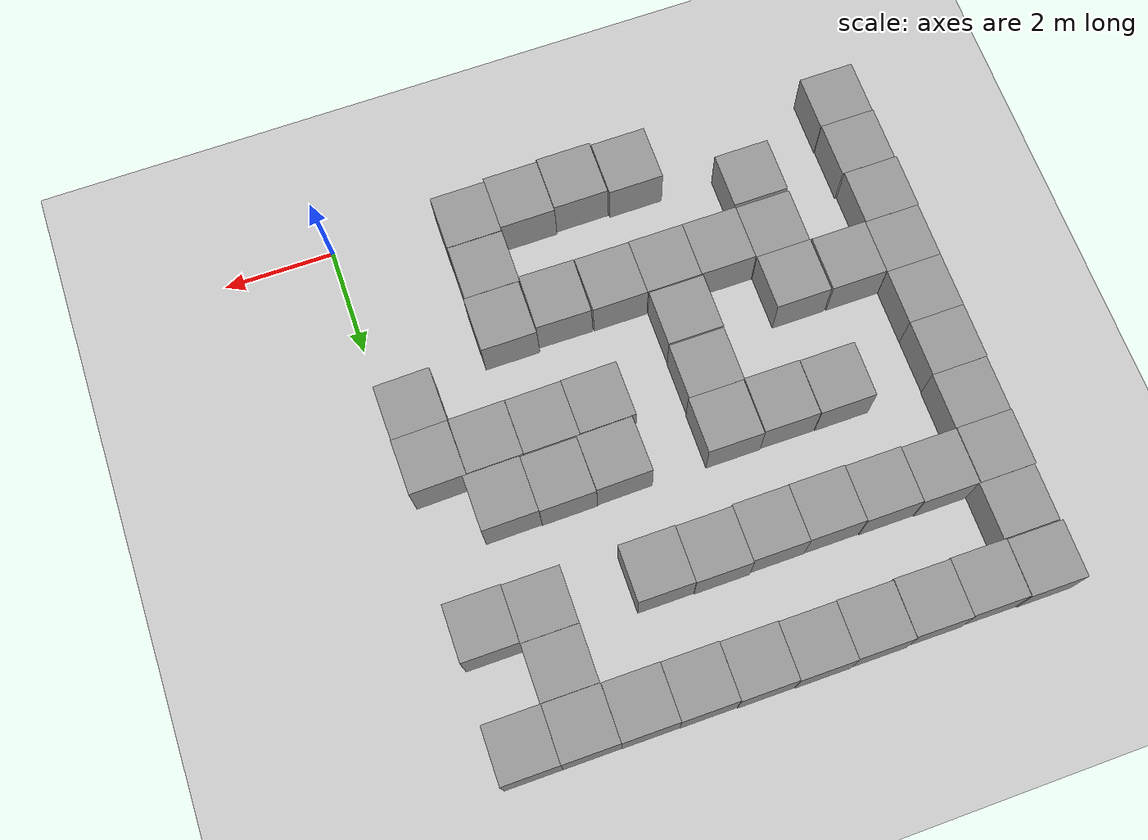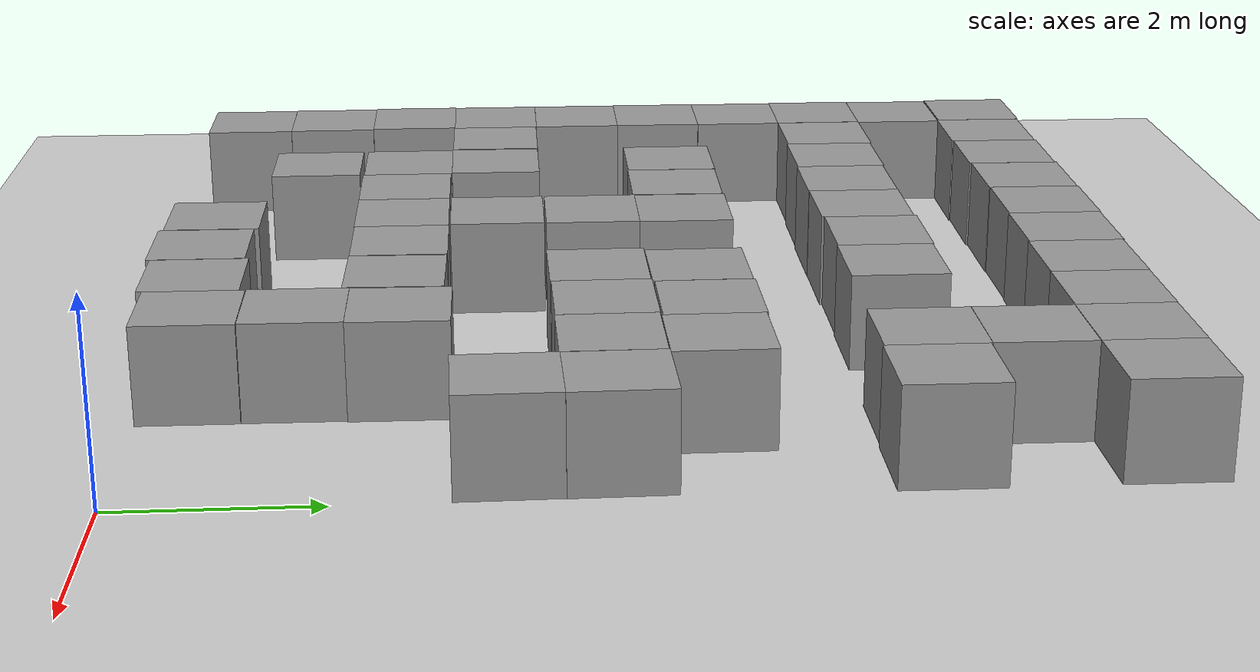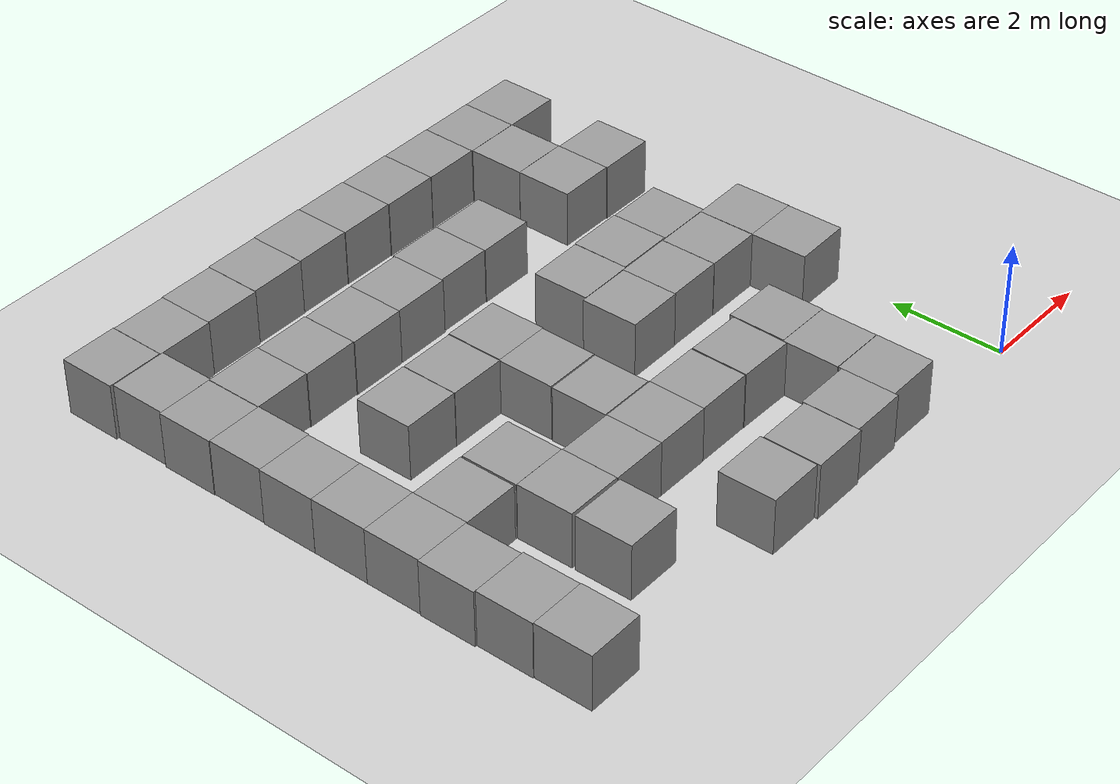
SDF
<sdf version="1.7">
 <world name="default">
  <model name="ground_plane">
   <static>1</static>
   <link name="link">
    <collision name="collision">
     <geometry><plane><normal>0 0 1</normal><size>100 100</size></plane></geometry>
     <surface><friction><ode><mu>100</mu><mu2>50</mu2></ode></friction></surface>
    </collision>
    <visual name="visual">
     <cast_shadows>0</cast_shadows>
     <geometry><plane><normal>0 0 1</normal><size>100 100</size></plane></geometry>
     <material>
      <script><uri>file://media/materials/scripts/gazebo.material</uri><name>Gazebo/Grey</name></script>
     </material>
    </visual>
   </link>
  </model>
  <model name="unit_box_24">
   <pose>-0.509041 7.47722 0.5 -0 -0 -0.00085</pose>
   <link name="link">
    <inertial>
     <mass>1</mass>
     <inertia>
      <ixx>0.166667</ixx>
      <ixy>0</ixy>
      <ixz>0</ixz>
      <iyy>0.166667</iyy>
      <iyz>0</iyz>
      <izz>0.166667</izz>
     </inertia>
    </inertial>
    <collision name="collision"><geometry><box><size>1 1 1</size></box></geometry></collision>
    <visual name="visual">
     <geometry><box><size>1 1 1</size></box></geometry>
     <material>
      <script><name>Gazebo/Grey</name><uri>file://media/materials/scripts/gazebo.material</uri></script>
     </material>
    </visual>
   </link>
  </model>
  <model name="unit_box_28">
   <pose>-0.516085 9.49636 0.5 -0 -0 -0.000638</pose>
   <link name="link">
    <inertial>
     <mass>1</mass>
     <inertia>
      <ixx>0.166667</ixx>
      <ixy>0</ixy>
      <ixz>0</ixz>
      <iyy>0.166667</iyy>
      <iyz>0</iyz>
      <izz>0.166667</izz>
     </inertia>
    </inertial>
    <collision name="collision"><geometry><box><size>1 1 1</size></box></geometry></collision>
    <visual name="visual">
     <geometry><box><size>1 1 1</size></box></geometry>
     <material>
      <script><name>Gazebo/Grey</name><uri>file://media/materials/scripts/gazebo.material</uri></script>
     </material>
    </visual>
   </link>
  </model>
  <model name="unit_box_29">
   <pose>-1.51618 9.49897 0.5 0 0 -0.000832</pose>
   <link name="link">
    <inertial>
     <mass>1</mass>
     <inertia>
      <ixx>0.166667</ixx>
      <ixy>0</ixy>
      <ixz>0</ixz>
      <iyy>0.166667</iyy>
      <iyz>0</iyz>
      <izz>0.166667</izz>
     </inertia>
    </inertial>
    <collision name="collision"><geometry><box><size>1 1 1</size></box></geometry></collision>
    <visual name="visual">
     <geometry><box><size>1 1 1</size></box></geometry>
     <material>
      <script><name>Gazebo/Grey</name><uri>file://media/materials/scripts/gazebo.material</uri></script>
     </material>
    </visual>
   </link>
  </model>
  <model name="unit_box_30">
   <pose>-1.50811 8.49539 0.5 -0 -0 -0.002751</pose>
   <link name="link">
    <inertial>
     <mass>1</mass>
     <inertia>
      <ixx>0.166667</ixx>
      <ixy>0</ixy>
      <ixz>0</ixz>
      <iyy>0.166667</iyy>
      <iyz>0</iyz>
      <izz>0.166667</izz>
     </inertia>
    </inertial>
    <collision name="collision"><geometry><box><size>1 1 1</size></box></geometry></collision>
    <visual name="visual">
     <geometry><box><size>1 1 1</size></box></geometry>
     <material>
      <script><name>Gazebo/Grey</name><uri>file://media/materials/scripts/gazebo.material</uri></script>
     </material>
    </visual>
   </link>
  </model>
  <model name="unit_box_31">
   <pose>-1.50908 7.49382 0.5 0 0 -0.000782</pose>
   <link name="link">
    <inertial>
     <mass>1</mass>
     <inertia>
      <ixx>0.166667</ixx>
      <ixy>0</ixy>
      <ixz>0</ixz>
      <iyy>0.166667</iyy>
      <iyz>0</iyz>
      <izz>0.166667</izz>
     </inertia>
    </inertial>
    <collision name="collision"><geometry><box><size>1 1 1</size></box></geometry></collision>
    <visual name="visual">
     <geometry><box><size>1 1 1</size></box></geometry>
     <material>
      <script><name>Gazebo/Grey</name><uri>file://media/materials/scripts/gazebo.material</uri></script>
     </material>
    </visual>
   </link>
  </model>
  <model name="unit_box_44">
   <pose>-0.525074 3.55463 0.5 0 -0 0.01907</pose>
   <link name="link">
    <inertial>
     <mass>1</mass>
     <inertia>
      <ixx>0.166667</ixx>
      <ixy>0</ixy>
      <ixz>0</ixz>
      <iyy>0.166667</iyy>
      <iyz>0</iyz>
      <izz>0.166667</izz>
     </inertia>
    </inertial>
    <collision name="collision"><geometry><box><size>1 1 1</size></box></geometry></collision>
    <visual name="visual">
     <geometry><box><size>1 1 1</size></box></geometry>
     <material>
      <script><name>Gazebo/Grey</name><uri>file://media/materials/scripts/gazebo.material</uri></script>
     </material>
    </visual>
   </link>
  </model>
  <model name="unit_box_45">
   <pose>-0.537463 4.55458 0.5 0 -0 0.019058</pose>
   <link name="link">
    <inertial>
     <mass>1</mass>
     <inertia>
      <ixx>0.166667</ixx>
      <ixy>0</ixy>
      <ixz>0</ixz>
      <iyy>0.166667</iyy>
      <iyz>0</iyz>
      <izz>0.166667</izz>
     </inertia>
    </inertial>
    <collision name="collision"><geometry><box><size>1 1 1</size></box></geometry></collision>
    <visual name="visual">
     <geometry><box><size>1 1 1</size></box></geometry>
     <material>
      <script><name>Gazebo/Grey</name><uri>file://media/materials/scripts/gazebo.material</uri></script>
     </material>
    </visual>
   </link>
  </model>
  <model name="unit_box_75">
   <pose>-2.51656 9.50541 0.5 0 0 -0.001612</pose>
   <link name="link">
    <inertial>
     <mass>1</mass>
     <inertia>
      <ixx>0.166667</ixx>
      <ixy>0</ixy>
      <ixz>0</ixz>
      <iyy>0.166667</iyy>
      <iyz>0</iyz>
      <izz>0.166667</izz>
     </inertia>
    </inertial>
    <collision name="collision"><geometry><box><size>1 1 1</size></box></geometry></collision>
    <visual name="visual">
     <geometry><box><size>1 1 1</size></box></geometry>
     <material>
      <script><name>Gazebo/Grey</name><uri>file://media/materials/scripts/gazebo.material</uri></script>
     </material>
    </visual>
   </link>
  </model>
  <model name="unit_box_76">
   <pose>-3.51668 9.51262 0.5 0 -0 -0.001869</pose>
   <link name="link">
    <inertial>
     <mass>1</mass>
     <inertia>
      <ixx>0.166667</ixx>
      <ixy>0</ixy>
      <ixz>0</ixz>
      <iyy>0.166667</iyy>
      <iyz>0</iyz>
      <izz>0.166667</izz>
     </inertia>
    </inertial>
    <collision name="collision"><geometry><box><size>1 1 1</size></box></geometry></collision>
    <visual name="visual">
     <geometry><box><size>1 1 1</size></box></geometry>
     <material>
      <script><name>Gazebo/Grey</name><uri>file://media/materials/scripts/gazebo.material</uri></script>
     </material>
    </visual>
   </link>
  </model>
  <model name="unit_box_77">
   <pose>-4.51687 9.52745 0.5 0 0 -0.002306</pose>
   <link name="link">
    <inertial>
     <mass>1</mass>
     <inertia>
      <ixx>0.166667</ixx>
      <ixy>0</ixy>
      <ixz>0</ixz>
      <iyy>0.166667</iyy>
      <iyz>0</iyz>
      <izz>0.166667</izz>
     </inertia>
    </inertial>
    <collision name="collision"><geometry><box><size>1 1 1</size></box></geometry></collision>
    <visual name="visual">
     <geometry><box><size>1 1 1</size></box></geometry>
     <material>
      <script><name>Gazebo/Grey</name><uri>file://media/materials/scripts/gazebo.material</uri></script>
     </material>
    </visual>
   </link>
  </model>
  <model name="unit_box_78">
   <pose>-5.51696 9.54083 0.5 0 -0 -0.002557</pose>
   <link name="link">
    <inertial>
     <mass>1</mass>
     <inertia>
      <ixx>0.166667</ixx>
      <ixy>0</ixy>
      <ixz>0</ixz>
      <iyy>0.166667</iyy>
      <iyz>0</iyz>
      <izz>0.166667</izz>
     </inertia>
    </inertial>
    <collision name="collision"><geometry><box><size>1 1 1</size></box></geometry></collision>
    <visual name="visual">
     <geometry><box><size>1 1 1</size></box></geometry>
     <material>
      <script><name>Gazebo/Grey</name><uri>file://media/materials/scripts/gazebo.material</uri></script>
     </material>
    </visual>
   </link>
  </model>
  <model name="unit_box_79">
   <pose>-6.5174 9.53508 0.5 0 0 -0.003402</pose>
   <link name="link">
    <inertial>
     <mass>1</mass>
     <inertia>
      <ixx>0.166667</ixx>
      <ixy>0</ixy>
      <ixz>0</ixz>
      <iyy>0.166667</iyy>
      <iyz>0</iyz>
      <izz>0.166667</izz>
     </inertia>
    </inertial>
    <collision name="collision"><geometry><box><size>1 1 1</size></box></geometry></collision>
    <visual name="visual">
     <geometry><box><size>1 1 1</size></box></geometry>
     <material>
      <script><name>Gazebo/Grey</name><uri>file://media/materials/scripts/gazebo.material</uri></script>
     </material>
    </visual>
   </link>
  </model>
  <model name="unit_box_80">
   <pose>-7.5195 9.52243 0.5 -0 -0 -0.007505</pose>
   <link name="link">
    <inertial>
     <mass>1</mass>
     <inertia>
      <ixx>0.166667</ixx>
      <ixy>0</ixy>
      <ixz>0</ixz>
      <iyy>0.166667</iyy>
      <iyz>0</iyz>
      <izz>0.166667</izz>
     </inertia>
    </inertial>
    <collision name="collision"><geometry><box><size>1 1 1</size></box></geometry></collision>
    <visual name="visual">
     <geometry><box><size>1 1 1</size></box></geometry>
     <material>
      <script><name>Gazebo/Grey</name><uri>file://media/materials/scripts/gazebo.material</uri></script>
     </material>
    </visual>
   </link>
  </model>
  <model name="unit_box_81">
   <pose>-8.5196 9.51523 0.5 0 0 -0.00754</pose>
   <link name="link">
    <inertial>
     <mass>1</mass>
     <inertia>
      <ixx>0.166667</ixx>
      <ixy>0</ixy>
      <ixz>0</ixz>
      <iyy>0.166667</iyy>
      <iyz>0</iyz>
      <izz>0.166667</izz>
     </inertia>
    </inertial>
    <collision name="collision"><geometry><box><size>1 1 1</size></box></geometry></collision>
    <visual name="visual">
     <geometry><box><size>1 1 1</size></box></geometry>
     <material>
      <script><name>Gazebo/Grey</name><uri>file://media/materials/scripts/gazebo.material</uri></script>
     </material>
    </visual>
   </link>
  </model>
  <model name="unit_box_82">
   <pose>-9.52172 9.53528 0.5 0 -0 -0.003047</pose>
   <link name="link">
    <inertial>
     <mass>1</mass>
     <inertia>
      <ixx>0.166667</ixx>
      <ixy>0</ixy>
      <ixz>0</ixz>
      <iyy>0.166667</iyy>
      <iyz>0</iyz>
      <izz>0.166667</izz>
     </inertia>
    </inertial>
    <collision name="collision"><geometry><box><size>1 1 1</size></box></geometry></collision>
    <visual name="visual">
     <geometry><box><size>1 1 1</size></box></geometry>
     <material>
      <script><name>Gazebo/Grey</name><uri>file://media/materials/scripts/gazebo.material</uri></script>
     </material>
    </visual>
   </link>
  </model>
  <model name="unit_box_83">
   <pose>-9.4779 8.519 0.5 0 0 -0.000674</pose>
   <link name="link">
    <inertial>
     <mass>1</mass>
     <inertia>
      <ixx>0.166667</ixx>
      <ixy>0</ixy>
      <ixz>0</ixz>
      <iyy>0.166667</iyy>
      <iyz>0</iyz>
      <izz>0.166667</izz>
     </inertia>
    </inertial>
    <collision name="collision"><geometry><box><size>1 1 1</size></box></geometry></collision>
    <visual name="visual">
     <geometry><box><size>1 1 1</size></box></geometry>
     <material>
      <script><name>Gazebo/Grey</name><uri>file://media/materials/scripts/gazebo.material</uri></script>
     </material>
    </visual>
   </link>
  </model>
  <model name="unit_box_84">
   <pose>-9.51006 7.5183 0.5 0 -0 -0.000219</pose>
   <link name="link">
    <inertial>
     <mass>1</mass>
     <inertia>
      <ixx>0.166667</ixx>
      <ixy>0</ixy>
      <ixz>0</ixz>
      <iyy>0.166667</iyy>
      <iyz>0</iyz>
      <izz>0.166667</izz>
     </inertia>
    </inertial>
    <collision name="collision"><geometry><box><size>1 1 1</size></box></geometry></collision>
    <visual name="visual">
     <geometry><box><size>1 1 1</size></box></geometry>
     <material>
      <script><name>Gazebo/Grey</name><uri>file://media/materials/scripts/gazebo.material</uri></script>
     </material>
    </visual>
   </link>
  </model>
  <model name="unit_box_85">
   <pose>-9.49862 6.5183 0.5 -0 -0 -0.000219</pose>
   <link name="link">
    <inertial>
     <mass>1</mass>
     <inertia>
      <ixx>0.166667</ixx>
      <ixy>0</ixy>
      <ixz>0</ixz>
      <iyy>0.166667</iyy>
      <iyz>0</iyz>
      <izz>0.166667</izz>
     </inertia>
    </inertial>
    <collision name="collision"><geometry><box><size>1 1 1</size></box></geometry></collision>
    <visual name="visual">
     <geometry><box><size>1 1 1</size></box></geometry>
     <material>
      <script><name>Gazebo/Grey</name><uri>file://media/materials/scripts/gazebo.material</uri></script>
     </material>
    </visual>
   </link>
  </model>
  <model name="unit_box_86">
   <pose>-9.51218 5.51827 0.5 0 0 -0.000156</pose>
   <link name="link">
    <inertial>
     <mass>1</mass>
     <inertia>
      <ixx>0.166667</ixx>
      <ixy>0</ixy>
      <ixz>0</ixz>
      <iyy>0.166667</iyy>
      <iyz>0</iyz>
      <izz>0.166667</izz>
     </inertia>
    </inertial>
    <collision name="collision"><geometry><box><size>1 1 1</size></box></geometry></collision>
    <visual name="visual">
     <geometry><box><size>1 1 1</size></box></geometry>
     <material>
      <script><name>Gazebo/Grey</name><uri>file://media/materials/scripts/gazebo.material</uri></script>
     </material>
    </visual>
   </link>
  </model>
  <model name="unit_box_87">
   <pose>-9.51178 4.51825 0.5 -0 -0 -0.000118</pose>
   <link name="link">
    <inertial>
     <mass>1</mass>
     <inertia>
      <ixx>0.166667</ixx>
      <ixy>0</ixy>
      <ixz>0</ixz>
      <iyy>0.166667</iyy>
      <iyz>0</iyz>
      <izz>0.166667</izz>
     </inertia>
    </inertial>
    <collision name="collision"><geometry><box><size>1 1 1</size></box></geometry></collision>
    <visual name="visual">
     <geometry><box><size>1 1 1</size></box></geometry>
     <material>
      <script><name>Gazebo/Grey</name><uri>file://media/materials/scripts/gazebo.material</uri></script>
     </material>
    </visual>
   </link>
  </model>
  <model name="unit_box_88">
   <pose>-9.51457 3.51821 0.5 0 0 -4.4e-05</pose>
   <link name="link">
    <inertial>
     <mass>1</mass>
     <inertia>
      <ixx>0.166667</ixx>
      <ixy>0</ixy>
      <ixz>0</ixz>
      <iyy>0.166667</iyy>
      <iyz>0</iyz>
      <izz>0.166667</izz>
     </inertia>
    </inertial>
    <collision name="collision"><geometry><box><size>1 1 1</size></box></geometry></collision>
    <visual name="visual">
     <geometry><box><size>1 1 1</size></box></geometry>
     <material>
      <script><name>Gazebo/Grey</name><uri>file://media/materials/scripts/gazebo.material</uri></script>
     </material>
    </visual>
   </link>
  </model>
  <model name="unit_box_89">
   <pose>-9.52834 2.51818 0.5 0 -0 1.4e-05</pose>
   <link name="link">
    <inertial>
     <mass>1</mass>
     <inertia>
      <ixx>0.166667</ixx>
      <ixy>0</ixy>
      <ixz>0</ixz>
      <iyy>0.166667</iyy>
      <iyz>0</iyz>
      <izz>0.166667</izz>
     </inertia>
    </inertial>
    <collision name="collision"><geometry><box><size>1 1 1</size></box></geometry></collision>
    <visual name="visual">
     <geometry><box><size>1 1 1</size></box></geometry>
     <material>
      <script><name>Gazebo/Grey</name><uri>file://media/materials/scripts/gazebo.material</uri></script>
     </material>
    </visual>
   </link>
  </model>
  <model name="unit_box_90">
   <pose>-9.4951 1.51812 0.5 0 -0 0.000152</pose>
   <link name="link">
    <inertial>
     <mass>1</mass>
     <inertia>
      <ixx>0.166667</ixx>
      <ixy>0</ixy>
      <ixz>0</ixz>
      <iyy>0.166667</iyy>
      <iyz>0</iyz>
      <izz>0.166667</izz>
     </inertia>
    </inertial>
    <collision name="collision"><geometry><box><size>1 1 1</size></box></geometry></collision>
    <visual name="visual">
     <geometry><box><size>1 1 1</size></box></geometry>
     <material>
      <script><name>Gazebo/Grey</name><uri>file://media/materials/scripts/gazebo.material</uri></script>
     </material>
    </visual>
   </link>
  </model>
  <model name="unit_box_91">
   <pose>-9.48183 0.518103 0.5 0 -0 0.000189</pose>
   <link name="link">
    <inertial>
     <mass>1</mass>
     <inertia>
      <ixx>0.166667</ixx>
      <ixy>0</ixy>
      <ixz>0</ixz>
      <iyy>0.166667</iyy>
      <iyz>0</iyz>
      <izz>0.166667</izz>
     </inertia>
    </inertial>
    <collision name="collision"><geometry><box><size>1 1 1</size></box></geometry></collision>
    <visual name="visual">
     <geometry><box><size>1 1 1</size></box></geometry>
     <material>
      <script><name>Gazebo/Grey</name><uri>file://media/materials/scripts/gazebo.material</uri></script>
     </material>
    </visual>
   </link>
  </model>
  <model name="unit_box_127">
   <pose>-3.50445 7.50714 0.5 0 -0 0.000685</pose>
   <link name="link">
    <inertial>
     <mass>1</mass>
     <inertia>
      <ixx>0.166667</ixx>
      <ixy>0</ixy>
      <ixz>0</ixz>
      <iyy>0.166667</iyy>
      <iyz>0</iyz>
      <izz>0.166667</izz>
     </inertia>
    </inertial>
    <collision name="collision"><geometry><box><size>1 1 1</size></box></geometry></collision>
    <visual name="visual">
     <geometry><box><size>1 1 1</size></box></geometry>
     <material>
      <script><name>Gazebo/Grey</name><uri>file://media/materials/scripts/gazebo.material</uri></script>
     </material>
    </visual>
   </link>
  </model>
  <model name="unit_box_128">
   <pose>-4.50448 7.52032 0.5 0 -0 0.000716</pose>
   <link name="link">
    <inertial>
     <mass>1</mass>
     <inertia>
      <ixx>0.166667</ixx>
      <ixy>0</ixy>
      <ixz>0</ixz>
      <iyy>0.166667</iyy>
      <iyz>0</iyz>
      <izz>0.166667</izz>
     </inertia>
    </inertial>
    <collision name="collision"><geometry><box><size>1 1 1</size></box></geometry></collision>
    <visual name="visual">
     <geometry><box><size>1 1 1</size></box></geometry>
     <material>
      <script><name>Gazebo/Grey</name><uri>file://media/materials/scripts/gazebo.material</uri></script>
     </material>
    </visual>
   </link>
  </model>
  <model name="unit_box_129">
   <pose>-5.50447 7.4942 0.5 0 -0 0.000722</pose>
   <link name="link">
    <inertial>
     <mass>1</mass>
     <inertia>
      <ixx>0.166667</ixx>
      <ixy>0</ixy>
      <ixz>0</ixz>
      <iyy>0.166667</iyy>
      <iyz>0</iyz>
      <izz>0.166667</izz>
     </inertia>
    </inertial>
    <collision name="collision"><geometry><box><size>1 1 1</size></box></geometry></collision>
    <visual name="visual">
     <geometry><box><size>1 1 1</size></box></geometry>
     <material>
      <script><name>Gazebo/Grey</name><uri>file://media/materials/scripts/gazebo.material</uri></script>
     </material>
    </visual>
   </link>
  </model>
  <model name="unit_box_130">
   <pose>-6.50446 7.48901 0.5 0 -0 0.000723</pose>
   <link name="link">
    <inertial>
     <mass>1</mass>
     <inertia>
      <ixx>0.166667</ixx>
      <ixy>0</ixy>
      <ixz>0</ixz>
      <iyy>0.166667</iyy>
      <iyz>0</iyz>
      <izz>0.166667</izz>
     </inertia>
    </inertial>
    <collision name="collision"><geometry><box><size>1 1 1</size></box></geometry></collision>
    <visual name="visual">
     <geometry><box><size>1 1 1</size></box></geometry>
     <material>
      <script><name>Gazebo/Grey</name><uri>file://media/materials/scripts/gazebo.material</uri></script>
     </material>
    </visual>
   </link>
  </model>
  <model name="unit_box_131">
   <pose>-7.5045 7.50313 0.5 0 -0 0.000775</pose>
   <link name="link">
    <inertial>
     <mass>1</mass>
     <inertia>
      <ixx>0.166667</ixx>
      <ixy>0</ixy>
      <ixz>0</ixz>
      <iyy>0.166667</iyy>
      <iyz>0</iyz>
      <izz>0.166667</izz>
     </inertia>
    </inertial>
    <collision name="collision"><geometry><box><size>1 1 1</size></box></geometry></collision>
    <visual name="visual">
     <geometry><box><size>1 1 1</size></box></geometry>
     <material>
      <script><name>Gazebo/Grey</name><uri>file://media/materials/scripts/gazebo.material</uri></script>
     </material>
    </visual>
   </link>
  </model>
  <model name="unit_box_132">
   <pose>-8.50452 7.51904 0.5 0 -0 0.000783</pose>
   <link name="link">
    <inertial>
     <mass>1</mass>
     <inertia>
      <ixx>0.166667</ixx>
      <ixy>0</ixy>
      <ixz>0</ixz>
      <iyy>0.166667</iyy>
      <iyz>0</iyz>
      <izz>0.166667</izz>
     </inertia>
    </inertial>
    <collision name="collision"><geometry><box><size>1 1 1</size></box></geometry></collision>
    <visual name="visual">
     <geometry><box><size>1 1 1</size></box></geometry>
     <material>
      <script><name>Gazebo/Grey</name><uri>file://media/materials/scripts/gazebo.material</uri></script>
     </material>
    </visual>
   </link>
  </model>
  <model name="unit_box_133">
   <pose>-7.48225 5.53067 0.5 0 -0 0</pose>
   <link name="link">
    <inertial>
     <mass>1</mass>
     <inertia>
      <ixx>0.166667</ixx>
      <ixy>0</ixy>
      <ixz>0</ixz>
      <iyy>0.166667</iyy>
      <iyz>0</iyz>
      <izz>0.166667</izz>
     </inertia>
    </inertial>
    <collision name="collision"><geometry><box><size>1 1 1</size></box></geometry></collision>
    <visual name="visual">
     <geometry><box><size>1 1 1</size></box></geometry>
     <material>
      <script><name>Gazebo/Grey</name><uri>file://media/materials/scripts/gazebo.material</uri></script>
     </material>
    </visual>
   </link>
  </model>
  <model name="unit_box_134">
   <pose>-8.51457 3.50911 0.5 0 0 -4.1e-05</pose>
   <link name="link">
    <inertial>
     <mass>1</mass>
     <inertia>
      <ixx>0.166667</ixx>
      <ixy>0</ixy>
      <ixz>0</ixz>
      <iyy>0.166667</iyy>
      <iyz>0</iyz>
      <izz>0.166667</izz>
     </inertia>
    </inertial>
    <collision name="collision"><geometry><box><size>1 1 1</size></box></geometry></collision>
    <visual name="visual">
     <geometry><box><size>1 1 1</size></box></geometry>
     <material>
      <script><name>Gazebo/Grey</name><uri>file://media/materials/scripts/gazebo.material</uri></script>
     </material>
    </visual>
   </link>
  </model>
  <model name="unit_box_135">
   <pose>-6.47754 5.52072 0.5 -0 -0 -0.00552</pose>
   <link name="link">
    <inertial>
     <mass>1</mass>
     <inertia>
      <ixx>0.166667</ixx>
      <ixy>0</ixy>
      <ixz>0</ixz>
      <iyy>0.166667</iyy>
      <iyz>0</iyz>
      <izz>0.166667</izz>
     </inertia>
    </inertial>
    <collision name="collision"><geometry><box><size>1 1 1</size></box></geometry></collision>
    <visual name="visual">
     <geometry><box><size>1 1 1</size></box></geometry>
     <material>
      <script><name>Gazebo/Grey</name><uri>file://media/materials/scripts/gazebo.material</uri></script>
     </material>
    </visual>
   </link>
  </model>
  <model name="unit_box_136">
   <pose>-7.48571 3.5044 0.5 0 -0 -1.9e-05</pose>
   <link name="link">
    <inertial>
     <mass>1</mass>
     <inertia>
      <ixx>0.166667</ixx>
      <ixy>0</ixy>
      <ixz>0</ixz>
      <iyy>0.166667</iyy>
      <iyz>0</iyz>
      <izz>0.166667</izz>
     </inertia>
    </inertial>
    <collision name="collision"><geometry><box><size>1 1 1</size></box></geometry></collision>
    <visual name="visual">
     <geometry><box><size>1 1 1</size></box></geometry>
     <material>
      <script><name>Gazebo/Grey</name><uri>file://media/materials/scripts/gazebo.material</uri></script>
     </material>
    </visual>
   </link>
  </model>
  <model name="unit_box_137">
   <pose>-7.47559 2.50413 0.5 -0 -0 -0.000463</pose>
   <link name="link">
    <inertial>
     <mass>1</mass>
     <inertia>
      <ixx>0.166667</ixx>
      <ixy>0</ixy>
      <ixz>0</ixz>
      <iyy>0.166667</iyy>
      <iyz>0</iyz>
      <izz>0.166667</izz>
     </inertia>
    </inertial>
    <collision name="collision"><geometry><box><size>1 1 1</size></box></geometry></collision>
    <visual name="visual">
     <geometry><box><size>1 1 1</size></box></geometry>
     <material>
      <script><name>Gazebo/Grey</name><uri>file://media/materials/scripts/gazebo.material</uri></script>
     </material>
    </visual>
   </link>
  </model>
  <model name="unit_box_138">
   <pose>-5.4635 5.53233 0.5 0 0 -0.000832</pose>
   <link name="link">
    <inertial>
     <mass>1</mass>
     <inertia>
      <ixx>0.166667</ixx>
      <ixy>0</ixy>
      <ixz>0</ixz>
      <iyy>0.166667</iyy>
      <iyz>0</iyz>
      <izz>0.166667</izz>
     </inertia>
    </inertial>
    <collision name="collision"><geometry><box><size>1 1 1</size></box></geometry></collision>
    <visual name="visual">
     <geometry><box><size>1 1 1</size></box></geometry>
     <material>
      <script><name>Gazebo/Grey</name><uri>file://media/materials/scripts/gazebo.material</uri></script>
     </material>
    </visual>
   </link>
  </model>
  <model name="unit_box_139">
   <pose>-5.48049 4.53226 0.5 0 0 -0.000771</pose>
   <link name="link">
    <inertial>
     <mass>1</mass>
     <inertia>
      <ixx>0.166667</ixx>
      <ixy>0</ixy>
      <ixz>0</ixz>
      <iyy>0.166667</iyy>
      <iyz>0</iyz>
      <izz>0.166667</izz>
     </inertia>
    </inertial>
    <collision name="collision"><geometry><box><size>1 1 1</size></box></geometry></collision>
    <visual name="visual">
     <geometry><box><size>1 1 1</size></box></geometry>
     <material>
      <script><name>Gazebo/Grey</name><uri>file://media/materials/scripts/gazebo.material</uri></script>
     </material>
    </visual>
   </link>
  </model>
  <model name="unit_box_140">
   <pose>-5.48927 3.50927 0.5 0 -0 0</pose>
   <link name="link">
    <inertial>
     <mass>1</mass>
     <inertia>
      <ixx>0.166667</ixx>
      <ixy>0</ixy>
      <ixz>0</ixz>
      <iyy>0.166667</iyy>
      <iyz>0</iyz>
      <izz>0.166667</izz>
     </inertia>
    </inertial>
    <collision name="collision"><geometry><box><size>1 1 1</size></box></geometry></collision>
    <visual name="visual">
     <geometry><box><size>1 1 1</size></box></geometry>
     <material>
      <script><name>Gazebo/Grey</name><uri>file://media/materials/scripts/gazebo.material</uri></script>
     </material>
    </visual>
   </link>
  </model>
  <model name="unit_box_141">
   <pose>-5.47527 2.49159 0.5 0 -0 -0.000971</pose>
   <link name="link">
    <inertial>
     <mass>1</mass>
     <inertia>
      <ixx>0.166667</ixx>
      <ixy>0</ixy>
      <ixz>0</ixz>
      <iyy>0.166667</iyy>
      <iyz>0</iyz>
      <izz>0.166667</izz>
     </inertia>
    </inertial>
    <collision name="collision"><geometry><box><size>1 1 1</size></box></geometry></collision>
    <visual name="visual">
     <geometry><box><size>1 1 1</size></box></geometry>
     <material>
      <script><name>Gazebo/Grey</name><uri>file://media/materials/scripts/gazebo.material</uri></script>
     </material>
    </visual>
   </link>
  </model>
  <model name="unit_box_142">
   <pose>-1.47649 5.54181 0.5 0 -0 0.009134</pose>
   <link name="link">
    <inertial>
     <mass>1</mass>
     <inertia>
      <ixx>0.166667</ixx>
      <ixy>0</ixy>
      <ixz>0</ixz>
      <iyy>0.166667</iyy>
      <iyz>0</iyz>
      <izz>0.166667</izz>
     </inertia>
    </inertial>
    <collision name="collision"><geometry><box><size>1 1 1</size></box></geometry></collision>
    <visual name="visual">
     <geometry><box><size>1 1 1</size></box></geometry>
     <material>
      <script><name>Gazebo/Grey</name><uri>file://media/materials/scripts/gazebo.material</uri></script>
     </material>
    </visual>
   </link>
  </model>
  <model name="unit_box_143">
   <pose>-2.47664 5.54638 0.5 0 -0 0.008995</pose>
   <link name="link">
    <inertial>
     <mass>1</mass>
     <inertia>
      <ixx>0.166667</ixx>
      <ixy>0</ixy>
      <ixz>0</ixz>
      <iyy>0.166667</iyy>
      <iyz>0</iyz>
      <izz>0.166667</izz>
     </inertia>
    </inertial>
    <collision name="collision"><geometry><box><size>1 1 1</size></box></geometry></collision>
    <visual name="visual">
     <geometry><box><size>1 1 1</size></box></geometry>
     <material>
      <script><name>Gazebo/Grey</name><uri>file://media/materials/scripts/gazebo.material</uri></script>
     </material>
    </visual>
   </link>
  </model>
  <model name="unit_box_144">
   <pose>-3.47906 5.51891 0.5 0 -0 0.01383</pose>
   <link name="link">
    <inertial>
     <mass>1</mass>
     <inertia>
      <ixx>0.166667</ixx>
      <ixy>0</ixy>
      <ixz>0</ixz>
      <iyy>0.166667</iyy>
      <iyz>0</iyz>
      <izz>0.166667</izz>
     </inertia>
    </inertial>
    <collision name="collision"><geometry><box><size>1 1 1</size></box></geometry></collision>
    <visual name="visual">
     <geometry><box><size>1 1 1</size></box></geometry>
     <material>
      <script><name>Gazebo/Grey</name><uri>file://media/materials/scripts/gazebo.material</uri></script>
     </material>
    </visual>
   </link>
  </model>
  <model name="unit_box_145">
   <pose>-3.54233 4.50936 0.5 0 -0 0.009637</pose>
   <link name="link">
    <inertial>
     <mass>1</mass>
     <inertia>
      <ixx>0.166667</ixx>
      <ixy>0</ixy>
      <ixz>0</ixz>
      <iyy>0.166667</iyy>
      <iyz>0</iyz>
      <izz>0.166667</izz>
     </inertia>
    </inertial>
    <collision name="collision"><geometry><box><size>1 1 1</size></box></geometry></collision>
    <visual name="visual">
     <geometry><box><size>1 1 1</size></box></geometry>
     <material>
      <script><name>Gazebo/Grey</name><uri>file://media/materials/scripts/gazebo.material</uri></script>
     </material>
    </visual>
   </link>
  </model>
  <model name="unit_box_146">
   <pose>-6.47558 2.49216 0.5 0 0 -0.000453</pose>
   <link name="link">
    <inertial>
     <mass>1</mass>
     <inertia>
      <ixx>0.166667</ixx>
      <ixy>0</ixy>
      <ixz>0</ixz>
      <iyy>0.166667</iyy>
      <iyz>0</iyz>
      <izz>0.166667</izz>
     </inertia>
    </inertial>
    <collision name="collision"><geometry><box><size>1 1 1</size></box></geometry></collision>
    <visual name="visual">
     <geometry><box><size>1 1 1</size></box></geometry>
     <material>
      <script><name>Gazebo/Grey</name><uri>file://media/materials/scripts/gazebo.material</uri></script>
     </material>
    </visual>
   </link>
  </model>
  <model name="unit_box_147">
   <pose>-4.47517 2.4961 0.5 0 0 -0.001022</pose>
   <link name="link">
    <inertial>
     <mass>1</mass>
     <inertia>
      <ixx>0.166667</ixx>
      <ixy>0</ixy>
      <ixz>0</ixz>
      <iyy>0.166667</iyy>
      <iyz>0</iyz>
      <izz>0.166667</izz>
     </inertia>
    </inertial>
    <collision name="collision"><geometry><box><size>1 1 1</size></box></geometry></collision>
    <visual name="visual">
     <geometry><box><size>1 1 1</size></box></geometry>
     <material>
      <script><name>Gazebo/Grey</name><uri>file://media/materials/scripts/gazebo.material</uri></script>
     </material>
    </visual>
   </link>
  </model>
  <model name="unit_box_148">
   <pose>-3.45651 2.48349 0.5 0 0 -0.014249</pose>
   <link name="link">
    <inertial>
     <mass>1</mass>
     <inertia>
      <ixx>0.166667</ixx>
      <ixy>0</ixy>
      <ixz>0</ixz>
      <iyy>0.166667</iyy>
      <iyz>0</iyz>
      <izz>0.166667</izz>
     </inertia>
    </inertial>
    <collision name="collision"><geometry><box><size>1 1 1</size></box></geometry></collision>
    <visual name="visual">
     <geometry><box><size>1 1 1</size></box></geometry>
     <material>
      <script><name>Gazebo/Grey</name><uri>file://media/materials/scripts/gazebo.material</uri></script>
     </material>
    </visual>
   </link>
  </model>
  <model name="unit_box_149">
   <pose>-2.54239 4.52795 0.5 0 -0 0.009687</pose>
   <link name="link">
    <inertial>
     <mass>1</mass>
     <inertia>
      <ixx>0.166667</ixx>
      <ixy>0</ixy>
      <ixz>0</ixz>
      <iyy>0.166667</iyy>
      <iyz>0</iyz>
      <izz>0.166667</izz>
     </inertia>
    </inertial>
    <collision name="collision"><geometry><box><size>1 1 1</size></box></geometry></collision>
    <visual name="visual">
     <geometry><box><size>1 1 1</size></box></geometry>
     <material>
      <script><name>Gazebo/Grey</name><uri>file://media/materials/scripts/gazebo.material</uri></script>
     </material>
    </visual>
   </link>
  </model>
  <model name="unit_box_150">
   <pose>-1.54162 4.53263 0.5 0 -0 0.010233</pose>
   <link name="link">
    <inertial>
     <mass>1</mass>
     <inertia>
      <ixx>0.166667</ixx>
      <ixy>0</ixy>
      <ixz>0</ixz>
      <iyy>0.166667</iyy>
      <iyz>0</iyz>
      <izz>0.166667</izz>
     </inertia>
    </inertial>
    <collision name="collision"><geometry><box><size>1 1 1</size></box></geometry></collision>
    <visual name="visual">
     <geometry><box><size>1 1 1</size></box></geometry>
     <material>
      <script><name>Gazebo/Grey</name><uri>file://media/materials/scripts/gazebo.material</uri></script>
     </material>
    </visual>
   </link>
  </model>
  <model name="unit_box_151">
   <pose>-2.43721 2.55457 0.5 0 -0 -0.002465</pose>
   <link name="link">
    <inertial>
     <mass>1</mass>
     <inertia>
      <ixx>0.166667</ixx>
      <ixy>0</ixy>
      <ixz>0</ixz>
      <iyy>0.166667</iyy>
      <iyz>0</iyz>
      <izz>0.166667</izz>
     </inertia>
    </inertial>
    <collision name="collision"><geometry><box><size>1 1 1</size></box></geometry></collision>
    <visual name="visual">
     <geometry><box><size>1 1 1</size></box></geometry>
     <material>
      <script><name>Gazebo/Grey</name><uri>file://media/materials/scripts/gazebo.material</uri></script>
     </material>
    </visual>
   </link>
  </model>
  <model name="unit_box_154">
   <pose>-7.47533 1.45234 0.5 0 -0 0</pose>
   <link name="link">
    <inertial>
     <mass>1</mass>
     <inertia>
      <ixx>0.166667</ixx>
      <ixy>0</ixy>
      <ixz>0</ixz>
      <iyy>0.166667</iyy>
      <iyz>0</iyz>
      <izz>0.166667</izz>
     </inertia>
    </inertial>
    <collision name="collision"><geometry><box><size>1 1 1</size></box></geometry></collision>
    <visual name="visual">
     <geometry><box><size>1 1 1</size></box></geometry>
     <material>
      <script><name>Gazebo/Grey</name><uri>file://media/materials/scripts/gazebo.material</uri></script>
     </material>
    </visual>
   </link>
  </model>
  <model name="unit_box_159">
   <pose>-5.47768 0.490055 0.5 0 -0 0</pose>
   <link name="link">
    <inertial>
     <mass>1</mass>
     <inertia>
      <ixx>0.166667</ixx>
      <ixy>0</ixy>
      <ixz>0</ixz>
      <iyy>0.166667</iyy>
      <iyz>0</iyz>
      <izz>0.166667</izz>
     </inertia>
    </inertial>
    <collision name="collision"><geometry><box><size>1 1 1</size></box></geometry></collision>
    <visual name="visual">
     <geometry><box><size>1 1 1</size></box></geometry>
     <material>
      <script><name>Gazebo/Grey</name><uri>file://media/materials/scripts/gazebo.material</uri></script>
     </material>
    </visual>
   </link>
  </model>
  <model name="unit_box_160">
   <pose>-2.4603 1.55339 0.5 -0 -0 -0.002076</pose>
   <link name="link">
    <inertial>
     <mass>1</mass>
     <inertia>
      <ixx>0.166667</ixx>
      <ixy>0</ixy>
      <ixz>0</ixz>
      <iyy>0.166667</iyy>
      <iyz>0</iyz>
      <izz>0.166667</izz>
     </inertia>
    </inertial>
    <collision name="collision"><geometry><box><size>1 1 1</size></box></geometry></collision>
    <visual name="visual">
     <geometry><box><size>1 1 1</size></box></geometry>
     <material>
      <script><name>Gazebo/Grey</name><uri>file://media/materials/scripts/gazebo.material</uri></script>
     </material>
    </visual>
   </link>
  </model>
  <model name="unit_box_161">
   <pose>-2.4572 0.546622 0.5 0 -0 0.00086</pose>
   <link name="link">
    <inertial>
     <mass>1</mass>
     <inertia>
      <ixx>0.166667</ixx>
      <ixy>0</ixy>
      <ixz>0</ixz>
      <iyy>0.166667</iyy>
      <iyz>0</iyz>
      <izz>0.166667</izz>
     </inertia>
    </inertial>
    <collision name="collision"><geometry><box><size>1 1 1</size></box></geometry></collision>
    <visual name="visual">
     <geometry><box><size>1 1 1</size></box></geometry>
     <material>
      <script><name>Gazebo/Grey</name><uri>file://media/materials/scripts/gazebo.material</uri></script>
     </material>
    </visual>
   </link>
  </model>
  <model name="unit_box_162">
   <pose>-3.45715 0.485527 0.5 0 -0 0.000864</pose>
   <link name="link">
    <inertial>
     <mass>1</mass>
     <inertia>
      <ixx>0.166667</ixx>
      <ixy>0</ixy>
      <ixz>0</ixz>
      <iyy>0.166667</iyy>
      <iyz>0</iyz>
      <izz>0.166667</izz>
     </inertia>
    </inertial>
    <collision name="collision"><geometry><box><size>1 1 1</size></box></geometry></collision>
    <visual name="visual">
     <geometry><box><size>1 1 1</size></box></geometry>
     <material>
      <script><name>Gazebo/Grey</name><uri>file://media/materials/scripts/gazebo.material</uri></script>
     </material>
    </visual>
   </link>
  </model>
  <model name="unit_box_163">
   <pose>-4.46255 0.443092 0.5 0 -0 0</pose>
   <link name="link">
    <inertial>
     <mass>1</mass>
     <inertia>
      <ixx>0.166667</ixx>
      <ixy>0</ixy>
      <ixz>0</ixz>
      <iyy>0.166667</iyy>
      <iyz>0</iyz>
      <izz>0.166667</izz>
     </inertia>
    </inertial>
    <collision name="collision"><geometry><box><size>1 1 1</size></box></geometry></collision>
    <visual name="visual">
     <geometry><box><size>1 1 1</size></box></geometry>
     <material>
      <script><name>Gazebo/Grey</name><uri>file://media/materials/scripts/gazebo.material</uri></script>
     </material>
    </visual>
   </link>
  </model>
 </world>
</sdf>
